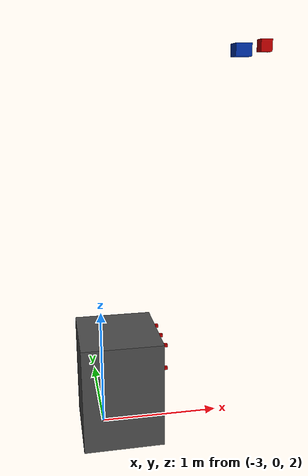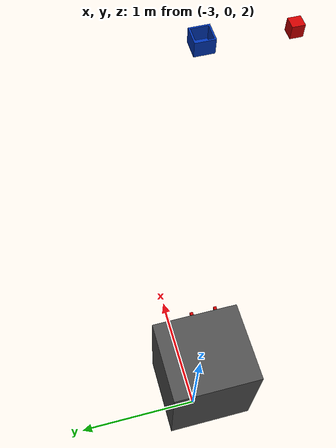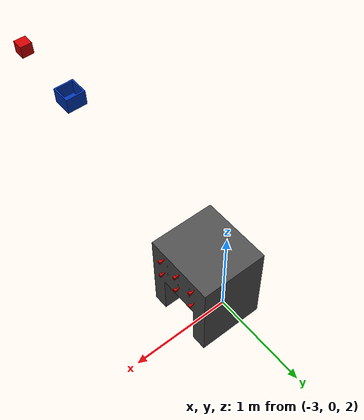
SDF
<sdf version="1.9">
 <world name="empty">
  <physics name="1ms" type="ignored">
   <max_step_size>0.001</max_step_size>
   <real_time_factor>1</real_time_factor>
   <real_time_update_rate>1000</real_time_update_rate>
  </physics>
  <plugin name="gz::sim::systems::Physics" filename="ignition-gazebo-physics-system"/>
  <plugin name="gz::sim::systems::UserCommands" filename="ignition-gazebo-user-commands-system"/>
  <plugin name="gz::sim::systems::SceneBroadcaster" filename="ignition-gazebo-scene-broadcaster-system"/>
  <plugin name="gz::sim::systems::Contact" filename="ignition-gazebo-contact-system"/>
  <plugin name="gz::sim::systems::Sensors" filename="ignition-gazebo-sensors-system">
   <render_engine>ogre2</render_engine>
  </plugin>
  <gravity>0 0 -9.8</gravity>
  <magnetic_field>6e-06 2.3e-05 -4.2e-05</magnetic_field>
  <atmosphere type="adiabatic"/>
  <scene><ambient>0.4 0.4 0.4 1</ambient><background>0.7 0.7 0.7 1</background><shadows>true</shadows></scene>
  <include><uri>model://Panel</uri><name>ButtonPanel</name><pose>-3.2 -0.45 2 0 0 0</pose></include>
  <include><uri>model://TransportBox</uri><name>TransportBox</name><pose>-2.0 -0.25 5 0 0 0</pose></include>
  <include><uri>model://CreditCube</uri><name>CreditCube</name><pose>-2 -0.75 5 0 0 0</pose></include>
  <light name="sun" type="directional">
   <pose>0 0 10 0 0 0</pose>
   <intensity>1</intensity>
   <direction>-0.5 0.1 -0.9</direction>
   <diffuse>0.8 0.8 0.8 1</diffuse>
   <specular>0.2 0.2 0.2 1</specular>
   <attenuation>
    <range>1000</range>
    <linear>0.01</linear>
    <constant>0.9</constant>
    <quadratic>0.001</quadratic>
   </attenuation>
  </light>
 </world>
</sdf>

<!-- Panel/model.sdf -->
<sdf version="1.9">
  <model name="panel">
    <static>true</static>
    <link name="link">
      <collision name="collision">
        <pose>0 0 0.0 0 0 0</pose>
        <geometry>
          <mesh>
            <uri>meshes/ButtonPanel.stl</uri>
          </mesh>
        </geometry>
      </collision>
      <visual name="visual">
        <geometry>
          <mesh>
            <uri>meshes/ButtonPanel.stl</uri>
          </mesh>
        </geometry>
        <material>
          <ambient>0.2 0.2 0.2 1</ambient>
          <diffuse>0.3 0.3 0.3 1</diffuse>
          <specular>0.5 0.5 0.5 1</specular>
        </material>
      </visual>
    </link>
    <!-- 3x2 grid of buttons on the front face -->
    <!-- Stems point into panel along -X, caps face outward -->
    <!-- Row 1 (bottom) -->
    <include>
      <uri>model://Button</uri>
      <name>Button_1</name>
      <pose>0.7 0.15 0.59 0 -1.5708 0</pose>
    </include>
    <include>
      <uri>model://Button</uri>
      <name>Button_2</name>
      <pose>0.7 0.35 0.59 0 -1.5708 0</pose>
    </include>
    <include>
      <uri>model://Button</uri>
      <name>Button_3</name>
      <pose>0.7 0.55 0.59 0 -1.5708 0</pose>
    </include>
    <!-- Row 2 (top) -->
    <include>
      <uri>model://Button</uri>
      <name>Button_4</name>
      <pose>0.7 0.15 0.79 0 -1.5708 0</pose>
    </include>
    <include>
      <uri>model://Button</uri>
      <name>Button_5</name>
      <pose>0.7 0.35 0.79 0 -1.5708 0</pose>
    </include>
    <include>
      <uri>model://Button</uri>
      <name>Button_6</name>
      <pose>0.7 0.55 0.79 0 -1.5708 0</pose>
    </include>
  </model>
</sdf>

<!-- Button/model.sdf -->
<sdf version="1.9">
  <model name="button">
    <static>true</static>
    <link name="link">
      <collision name="button_collision">
        <pose>0 0 0.0 0 0 0</pose>
        <geometry>
          <mesh>
            <uri>meshes/1x1Button.stl</uri>
          </mesh>
        </geometry>
      </collision>
      <visual name="button_visual">
        <geometry>
          <mesh>
            <uri>meshes/1x1Button.stl</uri>
          </mesh>
        </geometry>
        <material>
          <ambient>0.5 0.0 0.0 1</ambient>
          <diffuse>0.8 0.0 0.0 1</diffuse>
          <specular>0.9 0.4 0.4 1</specular>
        </material>
      </visual>
      <sensor name="button_contact" type="contact">
        <contact>
          <collision>button_collision</collision>
        </contact>
        <always_on>true</always_on>
        <update_rate>30</update_rate>
      </sensor>
    </link>
    <plugin filename="ignition-gazebo-contact-system" name="gz::sim::systems::Contact"/>
  </model>
</sdf>

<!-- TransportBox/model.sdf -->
<sdf version="1.9">
  <model name="transport_box">
    <static>false</static>
    <link name="link">
      <inertial>
        <mass>0.4</mass>
        <pose>0.06096 0.06096 0.04572 0 0 0</pose>
        <inertia>
          <ixx>7.68e-04</ixx>
          <ixy>0</ixy>
          <ixz>0</ixz>
          <iyy>7.68e-04</iyy>
          <iyz>0</iyz>
          <izz>9.6e-04</izz>
        </inertia>
      </inertial>
      <collision name="collision">
        <pose>0 0 0.0 0 0 0</pose>
        <geometry>
          <mesh>
            <uri>meshes/TransportBox.stl</uri>
            <scale>0.4 0.4 0.4</scale>
          </mesh>
        </geometry>
      </collision>
      <visual name="visual">
        <geometry>
          <mesh>
            <uri>meshes/TransportBox.stl</uri>
            <scale>0.4 0.4 0.4</scale>
          </mesh>
        </geometry>
        <material>
          <ambient>0.0 0.1 0.4 1</ambient>
          <diffuse>0.0 0.2 0.7 1</diffuse>
          <specular>0.3 0.4 0.9 1</specular>
        </material>
      </visual>
      <sensor name="transport_box_contact" type="contact">
        <contact>
          <collision>collision</collision>
        </contact>
        <always_on>true</always_on>
        <update_rate>30</update_rate>
      </sensor>
    </link>
    <plugin filename="ignition-gazebo-contact-system" name="gz::sim::systems::Contact"/>
  </model>
</sdf>

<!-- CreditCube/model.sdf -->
<sdf version="1.9">
  <model name="credit_cube">
    <static>false</static>
    <link name="link">
      <inertial>
        <mass>0.0625</mass>
        <pose>0.01905 0.01905 0.01905 0 0 0</pose>
        <inertia>
          <ixx>3.025e-05</ixx>
          <ixy>0</ixy>
          <ixz>0</ixz>
          <iyy>3.025e-05</iyy>
          <iyz>0</iyz>
          <izz>3.025e-05</izz>
        </inertia>
      </inertial>
      <collision name="collision">
        <pose>0 0 0.0 0 0 0</pose>
        <geometry>
          <mesh>
            <uri>meshes/CreditCube.stl</uri>
          </mesh>
        </geometry>
      </collision>
      <visual name="visual">
        <geometry>
          <mesh>
            <uri>meshes/CreditCube.stl</uri>
          </mesh>
        </geometry>
        <material>
          <ambient>0.5 0.0 0.0 1</ambient>
          <diffuse>0.8 0.0 0.0 1</diffuse>
          <specular>0.9 0.4 0.4 1</specular>
        </material>
      </visual>
      <sensor name="credit_cube_contact" type="contact">
        <contact>
          <collision>collision</collision>
        </contact>
        <always_on>true</always_on>
        <update_rate>30</update_rate>
      </sensor>
    </link>
    <plugin filename="ignition-gazebo-contact-system" name="gz::sim::systems::Contact"/>
  </model>
</sdf>
